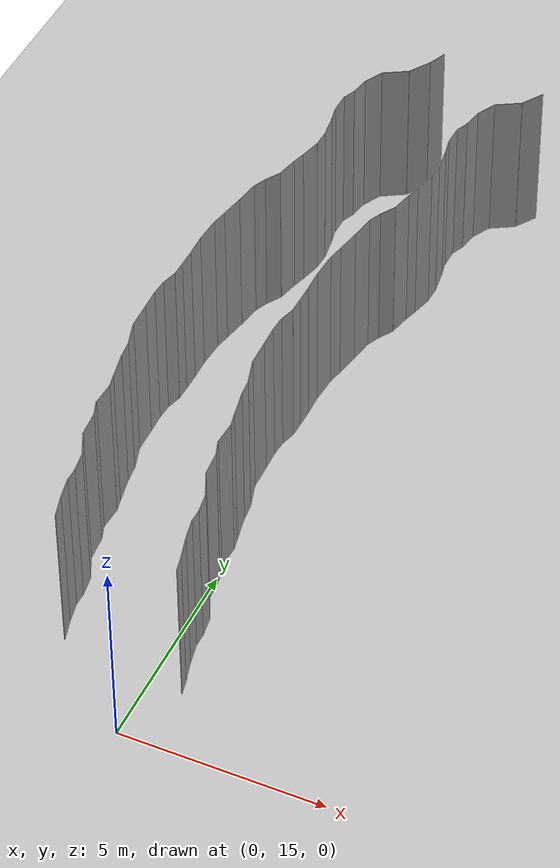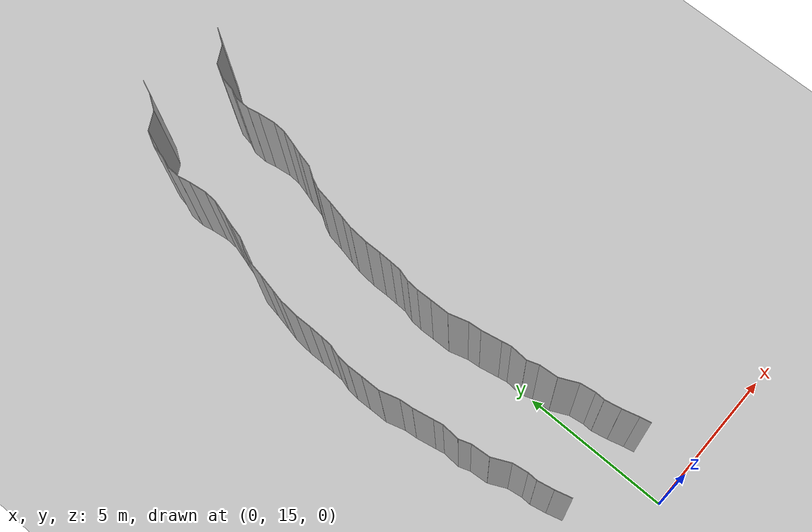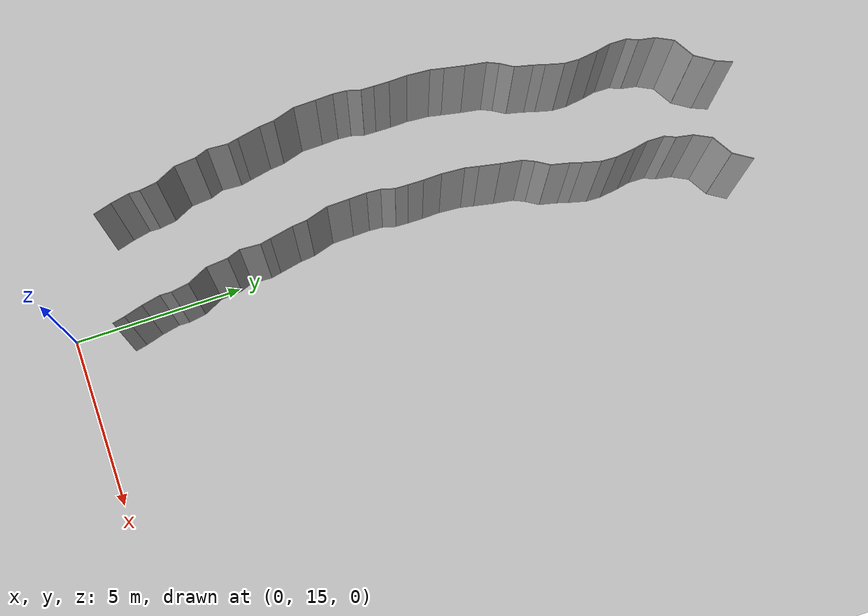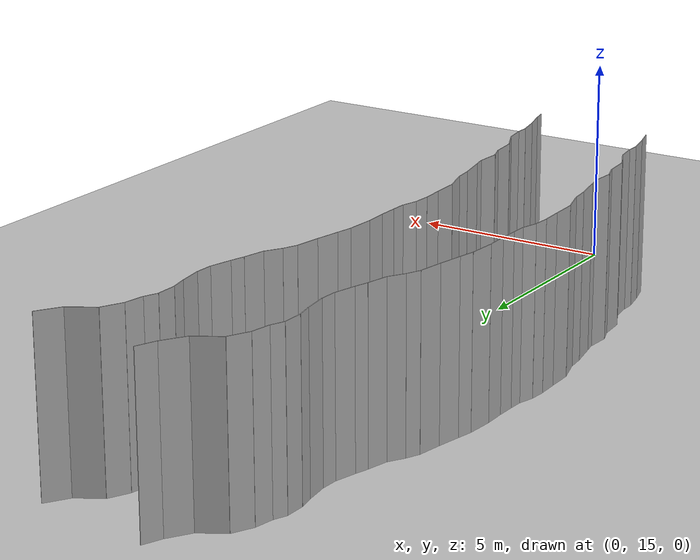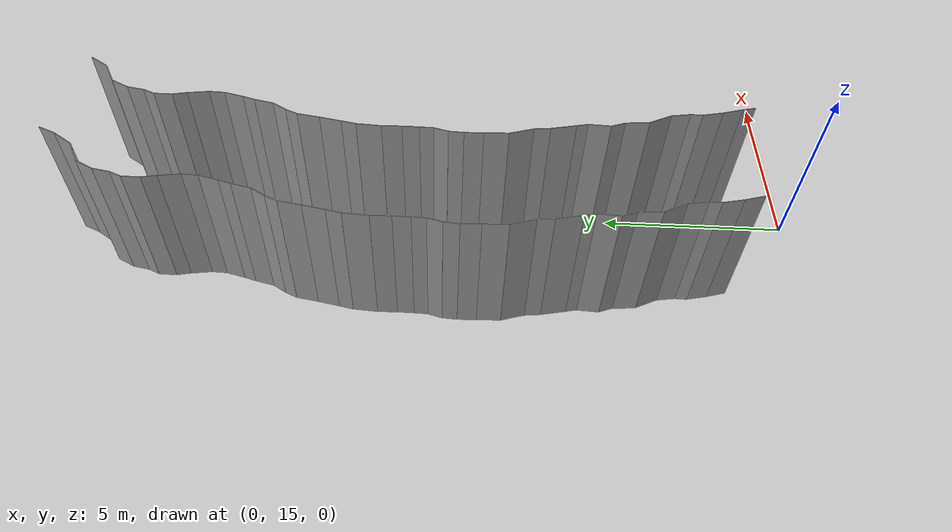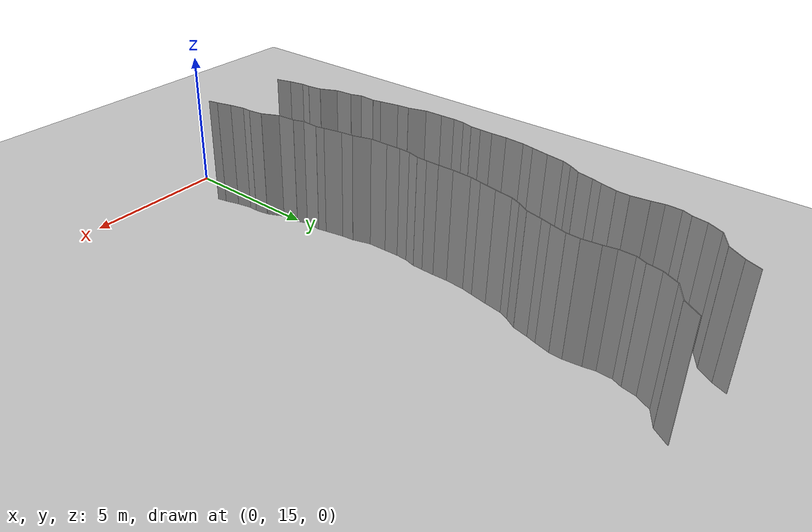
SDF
<sdf version="1.6">
 <world name="default">
  <model name="ground_plane">
   <static>1</static>
   <link name="link">
    <collision name="collision">
     <geometry><plane><normal>0 0 1</normal><size>200 200</size></plane></geometry>
     <surface><friction><ode><mu>100</mu><mu2>50</mu2></ode></friction></surface>
    </collision>
    <visual name="visual">
     <cast_shadows>0</cast_shadows>
     <geometry><plane><normal>0 0 1</normal><size>200 200</size></plane></geometry>
     <material>
      <script><uri>file://media/materials/scripts/gazebo.material</uri><name>Gazebo/Grey</name></script>
     </material>
    </visual>
   </link>
   <pose>0 100 0 0 -0 0</pose>
  </model>
  <model name="wall_73">
   <static>1</static>
   <pose>0.7550774608659254 16.759949421015538 2 0 0 0.21776068323996245</pose>
   <link name="link">
    <collision name="collision"><geometry><box><size>0.02 0.359325681317 4</size></box></geometry></collision>
    <visual name="visual">
     <material>
      <script><name>Gazebo/Grey</name><uri>file://media/materials/scripts/gazebo.material</uri></script>
     </material>
     <geometry><box><size>0.02 0.359325681317 4</size></box></geometry>
    </visual>
   </link>
  </model>
  <model name="wall_74">
   <static>1</static>
   <pose>-2.3580878478650598 17.201675022491074 2 0 0 0.2722587550987722</pose>
   <link name="link">
    <collision name="collision"><geometry><box><size>0.02 0.552979956595 4</size></box></geometry></collision>
    <visual name="visual">
     <material>
      <script><name>Gazebo/Grey</name><uri>file://media/materials/scripts/gazebo.material</uri></script>
     </material>
     <geometry><box><size>0.02 0.552979956595 4</size></box></geometry>
    </visual>
   </link>
  </model>
  <model name="wall_75">
   <static>1</static>
   <pose>0.6419121521349402 17.201675022491074 2 0 0 0.2722587550987722</pose>
   <link name="link">
    <collision name="collision"><geometry><box><size>0.02 0.552979956595 4</size></box></geometry></collision>
    <visual name="visual">
     <material>
      <script><name>Gazebo/Grey</name><uri>file://media/materials/scripts/gazebo.material</uri></script>
     </material>
     <geometry><box><size>0.02 0.552979956595 4</size></box></geometry>
    </visual>
   </link>
  </model>
  <model name="wall_76">
   <static>1</static>
   <pose>-2.4879441324434226 17.73647820993353 2 0 0 0.20385657502360116</pose>
   <link name="link">
    <collision name="collision"><geometry><box><size>0.02 0.548349519776 4</size></box></geometry></collision>
    <visual name="visual">
     <material>
      <script><name>Gazebo/Grey</name><uri>file://media/materials/scripts/gazebo.material</uri></script>
     </material>
     <geometry><box><size>0.02 0.548349519776 4</size></box></geometry>
    </visual>
   </link>
  </model>
  <model name="wall_77">
   <static>1</static>
   <pose>0.5120558675565774 17.73647820993353 2 0 0 0.20385657502360116</pose>
   <link name="link">
    <collision name="collision"><geometry><box><size>0.02 0.548349519776 4</size></box></geometry></collision>
    <visual name="visual">
     <material>
      <script><name>Gazebo/Grey</name><uri>file://media/materials/scripts/gazebo.material</uri></script>
     </material>
     <geometry><box><size>0.02 0.548349519776 4</size></box></geometry>
    </visual>
   </link>
  </model>
  <model name="wall_78">
   <static>1</static>
   <pose>-2.53915870391547 18.161688756901018 2 0 0 -0.027377183669309108</pose>
   <link name="link">
    <collision name="collision"><geometry><box><size>0.02 0.313543683075 4</size></box></geometry></collision>
    <visual name="visual">
     <material>
      <script><name>Gazebo/Grey</name><uri>file://media/materials/scripts/gazebo.material</uri></script>
     </material>
     <geometry><box><size>0.02 0.313543683075 4</size></box></geometry>
    </visual>
   </link>
  </model>
  <model name="wall_79">
   <static>1</static>
   <pose>0.46084129608453006 18.161688756901018 2 0 0 -0.027377183669309108</pose>
   <link name="link">
    <collision name="collision"><geometry><box><size>0.02 0.313543683075 4</size></box></geometry></collision>
    <visual name="visual">
     <material>
      <script><name>Gazebo/Grey</name><uri>file://media/materials/scripts/gazebo.material</uri></script>
     </material>
     <geometry><box><size>0.02 0.313543683075 4</size></box></geometry>
    </visual>
   </link>
  </model>
  <model name="wall_80">
   <static>1</static>
   <pose>-2.573424783727916 18.57162538054854 2 0 0 0.15110604399465902</pose>
   <link name="link">
    <collision name="collision"><geometry><box><size>0.02 0.51228444389 4</size></box></geometry></collision>
    <visual name="visual">
     <material>
      <script><name>Gazebo/Grey</name><uri>file://media/materials/scripts/gazebo.material</uri></script>
     </material>
     <geometry><box><size>0.02 0.51228444389 4</size></box></geometry>
    </visual>
   </link>
  </model>
  <model name="wall_81">
   <static>1</static>
   <pose>0.42657521627208395 18.57162538054854 2 0 0 0.15110604399465902</pose>
   <link name="link">
    <collision name="collision"><geometry><box><size>0.02 0.51228444389 4</size></box></geometry></collision>
    <visual name="visual">
     <material>
      <script><name>Gazebo/Grey</name><uri>file://media/materials/scripts/gazebo.material</uri></script>
     </material>
     <geometry><box><size>0.02 0.51228444389 4</size></box></geometry>
    </visual>
   </link>
  </model>
  <model name="wall_82">
   <static>1</static>
   <pose>-2.7519881979428247 19.118807327787838 2 0 0 0.4444904747670683</pose>
   <link name="link">
    <collision name="collision"><geometry><box><size>0.02 0.651193375674 4</size></box></geometry></collision>
    <visual name="visual">
     <material>
      <script><name>Gazebo/Grey</name><uri>file://media/materials/scripts/gazebo.material</uri></script>
     </material>
     <geometry><box><size>0.02 0.651193375674 4</size></box></geometry>
    </visual>
   </link>
  </model>
  <model name="wall_83">
   <static>1</static>
   <pose>0.24801180205717532 19.118807327787838 2 0 0 0.4444904747670683</pose>
   <link name="link">
    <collision name="collision"><geometry><box><size>0.02 0.651193375674 4</size></box></geometry></collision>
    <visual name="visual">
     <material>
      <script><name>Gazebo/Grey</name><uri>file://media/materials/scripts/gazebo.material</uri></script>
     </material>
     <geometry><box><size>0.02 0.651193375674 4</size></box></geometry>
    </visual>
   </link>
  </model>
  <model name="wall_84">
   <static>1</static>
   <pose>-2.9184482682267223 19.72543154447419 2 0 0 0.08440742873577052</pose>
   <link name="link">
    <collision name="collision"><geometry><box><size>0.02 0.627565853117 4</size></box></geometry></collision>
    <visual name="visual">
     <material>
      <script><name>Gazebo/Grey</name><uri>file://media/materials/scripts/gazebo.material</uri></script>
     </material>
     <geometry><box><size>0.02 0.627565853117 4</size></box></geometry>
    </visual>
   </link>
  </model>
  <model name="wall_85">
   <static>1</static>
   <pose>0.08155173177327768 19.72543154447419 2 0 0 0.08440742873577052</pose>
   <link name="link">
    <collision name="collision"><geometry><box><size>0.02 0.627565853117 4</size></box></geometry></collision>
    <visual name="visual">
     <material>
      <script><name>Gazebo/Grey</name><uri>file://media/materials/scripts/gazebo.material</uri></script>
     </material>
     <geometry><box><size>0.02 0.627565853117 4</size></box></geometry>
    </visual>
   </link>
  </model>
  <model name="wall_86">
   <static>1</static>
   <pose>-3.0103802036234923 20.224765987854678 2 0 0 0.3373606412311</pose>
   <link name="link">
    <collision name="collision"><geometry><box><size>0.02 0.395638827299 4</size></box></geometry></collision>
    <visual name="visual">
     <material>
      <script><name>Gazebo/Grey</name><uri>file://media/materials/scripts/gazebo.material</uri></script>
     </material>
     <geometry><box><size>0.02 0.395638827299 4</size></box></geometry>
    </visual>
   </link>
  </model>
  <model name="wall_87">
   <static>1</static>
   <pose>-0.010380203623492346 20.224765987854678 2 0 0 0.3373606412311</pose>
   <link name="link">
    <collision name="collision"><geometry><box><size>0.02 0.395638827299 4</size></box></geometry></collision>
    <visual name="visual">
     <material>
      <script><name>Gazebo/Grey</name><uri>file://media/materials/scripts/gazebo.material</uri></script>
     </material>
     <geometry><box><size>0.02 0.395638827299 4</size></box></geometry>
    </visual>
   </link>
  </model>
  <model name="wall_88">
   <static>1</static>
   <pose>-3.0590614660273667 20.705230304146117 2 0 0 -0.05710852619003276</pose>
   <link name="link">
    <collision name="collision"><geometry><box><size>0.02 0.588550827933 4</size></box></geometry></collision>
    <visual name="visual">
     <material>
      <script><name>Gazebo/Grey</name><uri>file://media/materials/scripts/gazebo.material</uri></script>
     </material>
     <geometry><box><size>0.02 0.588550827933 4</size></box></geometry>
    </visual>
   </link>
  </model>
  <model name="wall_89">
   <static>1</static>
   <pose>-0.05906146602736673 20.705230304146117 2 0 0 -0.05710852619003276</pose>
   <link name="link">
    <collision name="collision"><geometry><box><size>0.02 0.588550827933 4</size></box></geometry></collision>
    <visual name="visual">
     <material>
      <script><name>Gazebo/Grey</name><uri>file://media/materials/scripts/gazebo.material</uri></script>
     </material>
     <geometry><box><size>0.02 0.588550827933 4</size></box></geometry>
    </visual>
   </link>
  </model>
  <model name="wall_90">
   <static>1</static>
   <pose>-3.0735588118573456 21.148337560839384 2 0 0 0.20659712142865527</pose>
   <link name="link">
    <collision name="collision"><geometry><box><size>0.02 0.305111483007 4</size></box></geometry></collision>
    <visual name="visual">
     <material>
      <script><name>Gazebo/Grey</name><uri>file://media/materials/scripts/gazebo.material</uri></script>
     </material>
     <geometry><box><size>0.02 0.305111483007 4</size></box></geometry>
    </visual>
   </link>
  </model>
  <model name="wall_91">
   <static>1</static>
   <pose>-0.07355881185734559 21.148337560839384 2 0 0 0.20659712142865527</pose>
   <link name="link">
    <collision name="collision"><geometry><box><size>0.02 0.305111483007 4</size></box></geometry></collision>
    <visual name="visual">
     <material>
      <script><name>Gazebo/Grey</name><uri>file://media/materials/scripts/gazebo.material</uri></script>
     </material>
     <geometry><box><size>0.02 0.305111483007 4</size></box></geometry>
    </visual>
   </link>
  </model>
  <model name="wall_92">
   <static>1</static>
   <pose>-3.172111809200735 21.633806882878694 2 0 0 0.19747451174473082</pose>
   <link name="link">
    <collision name="collision"><geometry><box><size>0.02 0.685640773296 4</size></box></geometry></collision>
    <visual name="visual">
     <material>
      <script><name>Gazebo/Grey</name><uri>file://media/materials/scripts/gazebo.material</uri></script>
     </material>
     <geometry><box><size>0.02 0.685640773296 4</size></box></geometry>
    </visual>
   </link>
  </model>
  <model name="wall_93">
   <static>1</static>
   <pose>-0.172111809200735 21.633806882878694 2 0 0 0.19747451174473082</pose>
   <link name="link">
    <collision name="collision"><geometry><box><size>0.02 0.685640773296 4</size></box></geometry></collision>
    <visual name="visual">
     <material>
      <script><name>Gazebo/Grey</name><uri>file://media/materials/scripts/gazebo.material</uri></script>
     </material>
     <geometry><box><size>0.02 0.685640773296 4</size></box></geometry>
    </visual>
   </link>
  </model>
  <model name="wall_94">
   <static>1</static>
   <pose>-3.260638031250036 22.18285722947107 2 0 0 0.09956545866144452</pose>
   <link name="link">
    <collision name="collision"><geometry><box><size>0.02 0.427904435598 4</size></box></geometry></collision>
    <visual name="visual">
     <material>
      <script><name>Gazebo/Grey</name><uri>file://media/materials/scripts/gazebo.material</uri></script>
     </material>
     <geometry><box><size>0.02 0.427904435598 4</size></box></geometry>
    </visual>
   </link>
  </model>
  <model name="wall_95">
   <static>1</static>
   <pose>-0.26063803125003604 22.18285722947107 2 0 0 0.09956545866144452</pose>
   <link name="link">
    <collision name="collision"><geometry><box><size>0.02 0.427904435598 4</size></box></geometry></collision>
    <visual name="visual">
     <material>
      <script><name>Gazebo/Grey</name><uri>file://media/materials/scripts/gazebo.material</uri></script>
     </material>
     <geometry><box><size>0.02 0.427904435598 4</size></box></geometry>
    </visual>
   </link>
  </model>
  <model name="wall_96">
   <static>1</static>
   <pose>-3.37559019041575 22.713039445539632 2 0 0 0.28710877245513095</pose>
   <link name="link">
    <collision name="collision"><geometry><box><size>0.02 0.661663328301 4</size></box></geometry></collision>
    <visual name="visual">
     <material>
      <script><name>Gazebo/Grey</name><uri>file://media/materials/scripts/gazebo.material</uri></script>
     </material>
     <geometry><box><size>0.02 0.661663328301 4</size></box></geometry>
    </visual>
   </link>
  </model>
  <model name="wall_97">
   <static>1</static>
   <pose>-0.37559019041575015 22.713039445539632 2 0 0 0.28710877245513095</pose>
   <link name="link">
    <collision name="collision"><geometry><box><size>0.02 0.661663328301 4</size></box></geometry></collision>
    <visual name="visual">
     <material>
      <script><name>Gazebo/Grey</name><uri>file://media/materials/scripts/gazebo.material</uri></script>
     </material>
     <geometry><box><size>0.02 0.661663328301 4</size></box></geometry>
    </visual>
   </link>
  </model>
  <model name="wall_98">
   <static>1</static>
   <pose>-3.4765655600204584 23.350627148155734 2 0 0 0.022757001247260777</pose>
   <link name="link">
    <collision name="collision"><geometry><box><size>0.02 0.640762104032 4</size></box></geometry></collision>
    <visual name="visual">
     <material>
      <script><name>Gazebo/Grey</name><uri>file://media/materials/scripts/gazebo.material</uri></script>
     </material>
     <geometry><box><size>0.02 0.640762104032 4</size></box></geometry>
    </visual>
   </link>
  </model>
  <model name="wall_99">
   <static>1</static>
   <pose>-0.47656556002045836 23.350627148155734 2 0 0 0.022757001247260777</pose>
   <link name="link">
    <collision name="collision"><geometry><box><size>0.02 0.640762104032 4</size></box></geometry></collision>
    <visual name="visual">
     <material>
      <script><name>Gazebo/Grey</name><uri>file://media/materials/scripts/gazebo.material</uri></script>
     </material>
     <geometry><box><size>0.02 0.640762104032 4</size></box></geometry>
    </visual>
   </link>
  </model>
  <model name="wall_100">
   <static>1</static>
   <pose>-3.4926785539419574 23.92471308522436 2 0 0 0.0347501264575898</pose>
   <link name="link">
    <collision name="collision"><geometry><box><size>0.02 0.507882303425 4</size></box></geometry></collision>
    <visual name="visual">
     <material>
      <script><name>Gazebo/Grey</name><uri>file://media/materials/scripts/gazebo.material</uri></script>
     </material>
     <geometry><box><size>0.02 0.507882303425 4</size></box></geometry>
    </visual>
   </link>
  </model>
  <model name="wall_101">
   <static>1</static>
   <pose>-0.49267855394195736 23.92471308522436 2 0 0 0.0347501264575898</pose>
   <link name="link">
    <collision name="collision"><geometry><box><size>0.02 0.507882303425 4</size></box></geometry></collision>
    <visual name="visual">
     <material>
      <script><name>Gazebo/Grey</name><uri>file://media/materials/scripts/gazebo.material</uri></script>
     </material>
     <geometry><box><size>0.02 0.507882303425 4</size></box></geometry>
    </visual>
   </link>
  </model>
  <model name="wall_102">
   <static>1</static>
   <pose>-3.4880060224781717 24.378263700243625 2 0 0 -0.06745385195750807</pose>
   <link name="link">
    <collision name="collision"><geometry><box><size>0.02 0.400436199218 4</size></box></geometry></collision>
    <visual name="visual">
     <material>
      <script><name>Gazebo/Grey</name><uri>file://media/materials/scripts/gazebo.material</uri></script>
     </material>
     <geometry><box><size>0.02 0.400436199218 4</size></box></geometry>
    </visual>
   </link>
  </model>
  <model name="wall_103">
   <static>1</static>
   <pose>-0.4880060224781717 24.378263700243625 2 0 0 -0.06745385195750807</pose>
   <link name="link">
    <collision name="collision"><geometry><box><size>0.02 0.400436199218 4</size></box></geometry></collision>
    <visual name="visual">
     <material>
      <script><name>Gazebo/Grey</name><uri>file://media/materials/scripts/gazebo.material</uri></script>
     </material>
     <geometry><box><size>0.02 0.400436199218 4</size></box></geometry>
    </visual>
   </link>
  </model>
  <model name="wall_104">
   <static>1</static>
   <pose>-3.4211406904779946 24.769253763773005 2 0 0 -0.27216691738547527</pose>
   <link name="link">
    <collision name="collision"><geometry><box><size>0.02 0.397070486104 4</size></box></geometry></collision>
    <visual name="visual">
     <material>
      <script><name>Gazebo/Grey</name><uri>file://media/materials/scripts/gazebo.material</uri></script>
     </material>
     <geometry><box><size>0.02 0.397070486104 4</size></box></geometry>
    </visual>
   </link>
  </model>
  <model name="wall_105">
   <static>1</static>
   <pose>-0.42114069047799463 24.769253763773005 2 0 0 -0.27216691738547527</pose>
   <link name="link">
    <collision name="collision"><geometry><box><size>0.02 0.397070486104 4</size></box></geometry></collision>
    <visual name="visual">
     <material>
      <script><name>Gazebo/Grey</name><uri>file://media/materials/scripts/gazebo.material</uri></script>
     </material>
     <geometry><box><size>0.02 0.397070486104 4</size></box></geometry>
    </visual>
   </link>
  </model>
  <model name="wall_106">
   <static>1</static>
   <pose>-3.3622685841015447 25.1434598851362 2 0 0 -0.03006008768025267</pose>
   <link name="link">
    <collision name="collision"><geometry><box><size>0.02 0.366123067038 4</size></box></geometry></collision>
    <visual name="visual">
     <material>
      <script><name>Gazebo/Grey</name><uri>file://media/materials/scripts/gazebo.material</uri></script>
     </material>
     <geometry><box><size>0.02 0.366123067038 4</size></box></geometry>
    </visual>
   </link>
  </model>
  <model name="wall_107">
   <static>1</static>
   <pose>-0.3622685841015447 25.1434598851362 2 0 0 -0.03006008768025267</pose>
   <link name="link">
    <collision name="collision"><geometry><box><size>0.02 0.366123067038 4</size></box></geometry></collision>
    <visual name="visual">
     <material>
      <script><name>Gazebo/Grey</name><uri>file://media/materials/scripts/gazebo.material</uri></script>
     </material>
     <geometry><box><size>0.02 0.366123067038 4</size></box></geometry>
    </visual>
   </link>
  </model>
  <model name="wall_108">
   <static>1</static>
   <pose>-3.3534130535216713 25.551516314463214 2 0 0 -0.014898263752222586</pose>
   <link name="link">
    <collision name="collision"><geometry><box><size>0.02 0.450205157639 4</size></box></geometry></collision>
    <visual name="visual">
     <material>
      <script><name>Gazebo/Grey</name><uri>file://media/materials/scripts/gazebo.material</uri></script>
     </material>
     <geometry><box><size>0.02 0.450205157639 4</size></box></geometry>
    </visual>
   </link>
  </model>
  <model name="wall_109">
   <static>1</static>
   <pose>-0.3534130535216713 25.551516314463214 2 0 0 -0.014898263752222586</pose>
   <link name="link">
    <collision name="collision"><geometry><box><size>0.02 0.450205157639 4</size></box></geometry></collision>
    <visual name="visual">
     <material>
      <script><name>Gazebo/Grey</name><uri>file://media/materials/scripts/gazebo.material</uri></script>
     </material>
     <geometry><box><size>0.02 0.450205157639 4</size></box></geometry>
    </visual>
   </link>
  </model>
  <model name="wall_110">
   <static>1</static>
   <pose>-3.356392899036975 26.041410473022033 2 0 0 0.02391146507970312</pose>
   <link name="link">
    <collision name="collision"><geometry><box><size>0.02 0.529784569041 4</size></box></geometry></collision>
    <visual name="visual">
     <material>
      <script><name>Gazebo/Grey</name><uri>file://media/materials/scripts/gazebo.material</uri></script>
     </material>
     <geometry><box><size>0.02 0.529784569041 4</size></box></geometry>
    </visual>
   </link>
  </model>
  <model name="wall_111">
   <static>1</static>
   <pose>-0.35639289903697513 26.041410473022033 2 0 0 0.02391146507970312</pose>
   <link name="link">
    <collision name="collision"><geometry><box><size>0.02 0.529784569041 4</size></box></geometry></collision>
    <visual name="visual">
     <material>
      <script><name>Gazebo/Grey</name><uri>file://media/materials/scripts/gazebo.material</uri></script>
     </material>
     <geometry><box><size>0.02 0.529784569041 4</size></box></geometry>
    </visual>
   </link>
  </model>
  <model name="wall_112">
   <static>1</static>
   <pose>-3.3404072515148333 26.635480271856657 2 0 0 -0.06768320656146763</pose>
   <link name="link">
    <collision name="collision"><geometry><box><size>0.02 0.660017674616 4</size></box></geometry></collision>
    <visual name="visual">
     <material>
      <script><name>Gazebo/Grey</name><uri>file://media/materials/scripts/gazebo.material</uri></script>
     </material>
     <geometry><box><size>0.02 0.660017674616 4</size></box></geometry>
    </visual>
   </link>
  </model>
  <model name="wall_113">
   <static>1</static>
   <pose>-0.3404072515148333 26.635480271856657 2 0 0 -0.06768320656146763</pose>
   <link name="link">
    <collision name="collision"><geometry><box><size>0.02 0.660017674616 4</size></box></geometry></collision>
    <visual name="visual">
     <material>
      <script><name>Gazebo/Grey</name><uri>file://media/materials/scripts/gazebo.material</uri></script>
     </material>
     <geometry><box><size>0.02 0.660017674616 4</size></box></geometry>
    </visual>
   </link>
  </model>
  <model name="wall_114">
   <static>1</static>
   <pose>-3.278045276268228 27.158589274621665 2 0 0 -0.2036958244449089</pose>
   <link name="link">
    <collision name="collision"><geometry><box><size>0.02 0.395896435569 4</size></box></geometry></collision>
    <visual name="visual">
     <material>
      <script><name>Gazebo/Grey</name><uri>file://media/materials/scripts/gazebo.material</uri></script>
     </material>
     <geometry><box><size>0.02 0.395896435569 4</size></box></geometry>
    </visual>
   </link>
  </model>
  <model name="wall_115">
   <static>1</static>
   <pose>-0.27804527626822795 27.158589274621665 2 0 0 -0.2036958244449089</pose>
   <link name="link">
    <collision name="collision"><geometry><box><size>0.02 0.395896435569 4</size></box></geometry></collision>
    <visual name="visual">
     <material>
      <script><name>Gazebo/Grey</name><uri>file://media/materials/scripts/gazebo.material</uri></script>
     </material>
     <geometry><box><size>0.02 0.395896435569 4</size></box></geometry>
    </visual>
   </link>
  </model>
  <model name="wall_116">
   <static>1</static>
   <pose>-3.1810493759839127 27.64320814069163 2 0 0 -0.19342512237228718</pose>
   <link name="link">
    <collision name="collision"><geometry><box><size>0.02 0.592576804888 4</size></box></geometry></collision>
    <visual name="visual">
     <material>
      <script><name>Gazebo/Grey</name><uri>file://media/materials/scripts/gazebo.material</uri></script>
     </material>
     <geometry><box><size>0.02 0.592576804888 4</size></box></geometry>
    </visual>
   </link>
  </model>
  <model name="wall_117">
   <static>1</static>
   <pose>-0.18104937598391269 27.64320814069163 2 0 0 -0.19342512237228718</pose>
   <link name="link">
    <collision name="collision"><geometry><box><size>0.02 0.592576804888 4</size></box></geometry></collision>
    <visual name="visual">
     <material>
      <script><name>Gazebo/Grey</name><uri>file://media/materials/scripts/gazebo.material</uri></script>
     </material>
     <geometry><box><size>0.02 0.592576804888 4</size></box></geometry>
    </visual>
   </link>
  </model>
  <model name="wall_118">
   <static>1</static>
   <pose>-3.0746691874933614 28.233946151855786 2 0 0 -0.16330397522302026</pose>
   <link name="link">
    <collision name="collision"><geometry><box><size>0.02 0.608039473544 4</size></box></geometry></collision>
    <visual name="visual">
     <material>
      <script><name>Gazebo/Grey</name><uri>file://media/materials/scripts/gazebo.material</uri></script>
     </material>
     <geometry><box><size>0.02 0.608039473544 4</size></box></geometry>
    </visual>
   </link>
  </model>
  <model name="wall_119">
   <static>1</static>
   <pose>-0.07466918749336138 28.233946151855786 2 0 0 -0.16330397522302026</pose>
   <link name="link">
    <collision name="collision"><geometry><box><size>0.02 0.608039473544 4</size></box></geometry></collision>
    <visual name="visual">
     <material>
      <script><name>Gazebo/Grey</name><uri>file://media/materials/scripts/gazebo.material</uri></script>
     </material>
     <geometry><box><size>0.02 0.608039473544 4</size></box></geometry>
    </visual>
   </link>
  </model>
  <model name="wall_120">
   <static>1</static>
   <pose>-2.9534566263487974 28.695164218834012 2 0 0 -0.418854308049997</pose>
   <link name="link">
    <collision name="collision"><geometry><box><size>0.02 0.353001334746 4</size></box></geometry></collision>
    <visual name="visual">
     <material>
      <script><name>Gazebo/Grey</name><uri>file://media/materials/scripts/gazebo.material</uri></script>
     </material>
     <geometry><box><size>0.02 0.353001334746 4</size></box></geometry>
    </visual>
   </link>
  </model>
  <model name="wall_121">
   <static>1</static>
   <pose>0.046543373651202646 28.695164218834012 2 0 0 -0.418854308049997</pose>
   <link name="link">
    <collision name="collision"><geometry><box><size>0.02 0.353001334746 4</size></box></geometry></collision>
    <visual name="visual">
     <material>
      <script><name>Gazebo/Grey</name><uri>file://media/materials/scripts/gazebo.material</uri></script>
     </material>
     <geometry><box><size>0.02 0.353001334746 4</size></box></geometry>
    </visual>
   </link>
  </model>
  <model name="wall_122">
   <static>1</static>
   <pose>-2.769249267228615 29.039672645666798 2 0 0 -0.5502425237390761</pose>
   <link name="link">
    <collision name="collision"><geometry><box><size>0.02 0.429999430466 4</size></box></geometry></collision>
    <visual name="visual">
     <material>
      <script><name>Gazebo/Grey</name><uri>file://media/materials/scripts/gazebo.material</uri></script>
     </material>
     <geometry><box><size>0.02 0.429999430466 4</size></box></geometry>
    </visual>
   </link>
  </model>
  <model name="wall_123">
   <static>1</static>
   <pose>0.23075073277138491 29.039672645666798 2 0 0 -0.5502425237390761</pose>
   <link name="link">
    <collision name="collision"><geometry><box><size>0.02 0.429999430466 4</size></box></geometry></collision>
    <visual name="visual">
     <material>
      <script><name>Gazebo/Grey</name><uri>file://media/materials/scripts/gazebo.material</uri></script>
     </material>
     <geometry><box><size>0.02 0.429999430466 4</size></box></geometry>
    </visual>
   </link>
  </model>
  <model name="wall_124">
   <static>1</static>
   <pose>-2.596490526270831 29.484019601218396 2 0 0 -0.22711544646572687</pose>
   <link name="link">
    <collision name="collision"><geometry><box><size>0.02 0.535925973622 4</size></box></geometry></collision>
    <visual name="visual">
     <material>
      <script><name>Gazebo/Grey</name><uri>file://media/materials/scripts/gazebo.material</uri></script>
     </material>
     <geometry><box><size>0.02 0.535925973622 4</size></box></geometry>
    </visual>
   </link>
  </model>
  <model name="wall_125">
   <static>1</static>
   <pose>0.4035094737291689 29.484019601218396 2 0 0 -0.22711544646572687</pose>
   <link name="link">
    <collision name="collision"><geometry><box><size>0.02 0.535925973622 4</size></box></geometry></collision>
    <visual name="visual">
     <material>
      <script><name>Gazebo/Grey</name><uri>file://media/materials/scripts/gazebo.material</uri></script>
     </material>
     <geometry><box><size>0.02 0.535925973622 4</size></box></geometry>
    </visual>
   </link>
  </model>
  <model name="wall_126">
   <static>1</static>
   <pose>-2.4881090916266255 29.90686813657523 2 0 0 -0.2887022005089361</pose>
   <link name="link">
    <collision name="collision"><geometry><box><size>0.02 0.337501475603 4</size></box></geometry></collision>
    <visual name="visual">
     <material>
      <script><name>Gazebo/Grey</name><uri>file://media/materials/scripts/gazebo.material</uri></script>
     </material>
     <geometry><box><size>0.02 0.337501475603 4</size></box></geometry>
    </visual>
   </link>
  </model>
  <model name="wall_127">
   <static>1</static>
   <pose>0.5118909083733745 29.90686813657523 2 0 0 -0.2887022005089361</pose>
   <link name="link">
    <collision name="collision"><geometry><box><size>0.02 0.337501475603 4</size></box></geometry></collision>
    <visual name="visual">
     <material>
      <script><name>Gazebo/Grey</name><uri>file://media/materials/scripts/gazebo.material</uri></script>
     </material>
     <geometry><box><size>0.02 0.337501475603 4</size></box></geometry>
    </visual>
   </link>
  </model>
  <model name="wall_128">
   <static>1</static>
   <pose>-2.3736314465062462 30.328112122899004 2 0 0 -0.2506421133115511</pose>
   <link name="link">
    <collision name="collision"><geometry><box><size>0.02 0.535692875456 4</size></box></geometry></collision>
    <visual name="visual">
     <material>
      <script><name>Gazebo/Grey</name><uri>file://media/materials/scripts/gazebo.material</uri></script>
     </material>
     <geometry><box><size>0.02 0.535692875456 4</size></box></geometry>
    </visual>
   </link>
  </model>
  <model name="wall_129">
   <static>1</static>
   <pose>0.6263685534937538 30.328112122899004 2 0 0 -0.2506421133115511</pose>
   <link name="link">
    <collision name="collision"><geometry><box><size>0.02 0.535692875456 4</size></box></geometry></collision>
    <visual name="visual">
     <material>
      <script><name>Gazebo/Grey</name><uri>file://media/materials/scripts/gazebo.material</uri></script>
     </material>
     <geometry><box><size>0.02 0.535692875456 4</size></box></geometry>
    </visual>
   </link>
  </model>
  <model name="wall_130">
   <static>1</static>
   <pose>-2.298468027922062 30.79781900812583 2 0 0 -0.041504631617629933</pose>
   <link name="link">
    <collision name="collision"><geometry><box><size>0.02 0.420821906232 4</size></box></geometry></collision>
    <visual name="visual">
     <material>
      <script><name>Gazebo/Grey</name><uri>file://media/materials/scripts/gazebo.material</uri></script>
     </material>
     <geometry><box><size>0.02 0.420821906232 4</size></box></geometry>
    </visual>
   </link>
  </model>
  <model name="wall_131">
   <static>1</static>
   <pose>0.7015319720779378 30.79781900812583 2 0 0 -0.041504631617629933</pose>
   <link name="link">
    <collision name="collision"><geometry><box><size>0.02 0.420821906232 4</size></box></geometry></collision>
    <visual name="visual">
     <material>
      <script><name>Gazebo/Grey</name><uri>file://media/materials/scripts/gazebo.material</uri></script>
     </material>
     <geometry><box><size>0.02 0.420821906232 4</size></box></geometry>
    </visual>
   </link>
  </model>
  <model name="wall_132">
   <static>1</static>
   <pose>-2.3282483827912337 31.296272798511932 2 0 0 0.1328276604587078</pose>
   <link name="link">
    <collision name="collision"><geometry><box><size>0.02 0.581570927501 4</size></box></geometry></collision>
    <visual name="visual">
     <material>
      <script><name>Gazebo/Grey</name><uri>file://media/materials/scripts/gazebo.material</uri></script>
     </material>
     <geometry><box><size>0.02 0.581570927501 4</size></box></geometry>
    </visual>
   </link>
  </model>
  <model name="wall_133">
   <static>1</static>
   <pose>0.6717516172087663 31.296272798511932 2 0 0 0.1328276604587078</pose>
   <link name="link">
    <collision name="collision"><geometry><box><size>0.02 0.581570927501 4</size></box></geometry></collision>
    <visual name="visual">
     <material>
      <script><name>Gazebo/Grey</name><uri>file://media/materials/scripts/gazebo.material</uri></script>
     </material>
     <geometry><box><size>0.02 0.581570927501 4</size></box></geometry>
    </visual>
   </link>
  </model>
  <model name="wall_134">
   <static>1</static>
   <pose>-2.406269584704103 31.778388307733792 2 0 0 0.201023170386226</pose>
   <link name="link">
    <collision name="collision"><geometry><box><size>0.02 0.395752280653 4</size></box></geometry></collision>
    <visual name="visual">
     <material>
      <script><name>Gazebo/Grey</name><uri>file://media/materials/scripts/gazebo.material</uri></script>
     </material>
     <geometry><box><size>0.02 0.395752280653 4</size></box></geometry>
    </visual>
   </link>
  </model>
  <model name="wall_135">
   <static>1</static>
   <pose>0.5937304152958971 31.778388307733792 2 0 0 0.201023170386226</pose>
   <link name="link">
    <collision name="collision"><geometry><box><size>0.02 0.395752280653 4</size></box></geometry></collision>
    <visual name="visual">
     <material>
      <script><name>Gazebo/Grey</name><uri>file://media/materials/scripts/gazebo.material</uri></script>
     </material>
     <geometry><box><size>0.02 0.395752280653 4</size></box></geometry>
    </visual>
   </link>
  </model>
  <model name="wall_136">
   <static>1</static>
   <pose>-2.4413431679476343 32.218914206341765 2 0 0 -0.01798720182897488</pose>
   <link name="link">
    <collision name="collision"><geometry><box><size>0.02 0.49334866916 4</size></box></geometry></collision>
    <visual name="visual">
     <material>
      <script><name>Gazebo/Grey</name><uri>file://media/materials/scripts/gazebo.material</uri></script>
     </material>
     <geometry><box><size>0.02 0.49334866916 4</size></box></geometry>
    </visual>
   </link>
  </model>
  <model name="wall_137">
   <static>1</static>
   <pose>0.5586568320523657 32.218914206341765 2 0 0 -0.01798720182897488</pose>
   <link name="link">
    <collision name="collision"><geometry><box><size>0.02 0.49334866916 4</size></box></geometry></collision>
    <visual name="visual">
     <material>
      <script><name>Gazebo/Grey</name><uri>file://media/materials/scripts/gazebo.material</uri></script>
     </material>
     <geometry><box><size>0.02 0.49334866916 4</size></box></geometry>
    </visual>
   </link>
  </model>
  <model name="wall_138">
   <static>1</static>
   <pose>-2.3701894667496437 32.62078868634486 2 0 0 -0.40590090779690924</pose>
   <link name="link">
    <collision name="collision"><geometry><box><size>0.02 0.337938606372 4</size></box></geometry></collision>
    <visual name="visual">
     <material>
      <script><name>Gazebo/Grey</name><uri>file://media/materials/scripts/gazebo.material</uri></script>
     </material>
     <geometry><box><size>0.02 0.337938606372 4</size></box></geometry>
    </visual>
   </link>
  </model>
  <model name="wall_139">
   <static>1</static>
   <pose>0.6298105332503563 32.62078868634486 2 0 0 -0.40590090779690924</pose>
   <link name="link">
    <collision name="collision"><geometry><box><size>0.02 0.337938606372 4</size></box></geometry></collision>
    <visual name="visual">
     <material>
      <script><name>Gazebo/Grey</name><uri>file://media/materials/scripts/gazebo.material</uri></script>
     </material>
     <geometry><box><size>0.02 0.337938606372 4</size></box></geometry>
    </visual>
   </link>
  </model>
  <model name="wall_140">
   <static>1</static>
   <pose>-2.2607173230914883 33.009523107108514 2 0 0 -0.1811038183682419</pose>
   <link name="link">
    <collision name="collision"><geometry><box><size>0.02 0.474753104366 4</size></box></geometry></collision>
    <visual name="visual">
     <material>
      <script><name>Gazebo/Grey</name><uri>file://media/materials/scripts/gazebo.material</uri></script>
     </material>
     <geometry><box><size>0.02 0.474753104366 4</size></box></geometry>
    </visual>
   </link>
  </model>
  <model name="wall_141">
   <static>1</static>
   <pose>0.7392826769085117 33.009523107108514 2 0 0 -0.1811038183682419</pose>
   <link name="link">
    <collision name="collision"><geometry><box><size>0.02 0.474753104366 4</size></box></geometry></collision>
    <visual name="visual">
     <material>
      <script><name>Gazebo/Grey</name><uri>file://media/materials/scripts/gazebo.material</uri></script>
     </material>
     <geometry><box><size>0.02 0.474753104366 4</size></box></geometry>
    </visual>
   </link>
  </model>
  <model name="wall_142">
   <static>1</static>
   <pose>-2.096304269491912 33.48379254107834 2 0 0 -0.4678595254764388</pose>
   <link name="link">
    <collision name="collision"><geometry><box><size>0.02 0.539530416756 4</size></box></geometry></collision>
    <visual name="visual">
     <material>
      <script><name>Gazebo/Grey</name><uri>file://media/materials/scripts/gazebo.material</uri></script>
     </material>
     <geometry><box><size>0.02 0.539530416756 4</size></box></geometry>
    </visual>
   </link>
  </model>
  <model name="wall_143">
   <static>1</static>
   <pose>0.9036957305080882 33.48379254107834 2 0 0 -0.4678595254764388</pose>
   <link name="link">
    <collision name="collision"><geometry><box><size>0.02 0.539530416756 4</size></box></geometry></collision>
    <visual name="visual">
     <material>
      <script><name>Gazebo/Grey</name><uri>file://media/materials/scripts/gazebo.material</uri></script>
     </material>
     <geometry><box><size>0.02 0.539530416756 4</size></box></geometry>
    </visual>
   </link>
  </model>
  <model name="wall_144">
   <static>1</static>
   <pose>-1.681288298329437 33.895355501465744 2 0 0 -1.0435811005950058</pose>
   <link name="link">
    <collision name="collision"><geometry><box><size>0.02 0.678903475136 4</size></box></geometry></collision>
    <visual name="visual">
     <material>
      <script><name>Gazebo/Grey</name><uri>file://media/materials/scripts/gazebo.material</uri></script>
     </material>
     <geometry><box><size>0.02 0.678903475136 4</size></box></geometry>
    </visual>
   </link>
  </model>
  <model name="wall_145">
   <static>1</static>
   <pose>1.318711701670563 33.895355501465744 2 0 0 -1.0435811005950058</pose>
   <link name="link">
    <collision name="collision"><geometry><box><size>0.02 0.678903475136 4</size></box></geometry></collision>
    <visual name="visual">
     <material>
      <script><name>Gazebo/Grey</name><uri>file://media/materials/scripts/gazebo.material</uri></script>
     </material>
     <geometry><box><size>0.02 0.678903475136 4</size></box></geometry>
    </visual>
   </link>
  </model>
  <model name="wall_146">
   <static>1</static>
   <pose>-1.2184778645578653 34.32762028470525 2 0 0 -0.5750091971194763</pose>
   <link name="link">
    <collision name="collision"><geometry><box><size>0.02 0.623166925031 4</size></box></geometry></collision>
    <visual name="visual">
     <material>
      <script><name>Gazebo/Grey</name><uri>file://media/materials/scripts/gazebo.material</uri></script>
     </material>
     <geometry><box><size>0.02 0.623166925031 4</size></box></geometry>
    </visual>
   </link>
  </model>
  <model name="wall_147">
   <static>1</static>
   <pose>1.7815221354421347 34.32762028470525 2 0 0 -0.5750091971194763</pose>
   <link name="link">
    <collision name="collision"><geometry><box><size>0.02 0.623166925031 4</size></box></geometry></collision>
    <visual name="visual">
     <material>
      <script><name>Gazebo/Grey</name><uri>file://media/materials/scripts/gazebo.material</uri></script>
     </material>
     <geometry><box><size>0.02 0.623166925031 4</size></box></geometry>
    </visual>
   </link>
  </model>
  <model name="wall_148">
   <static>1</static>
   <pose>-0.9536596506162306 34.81855095070675 2 0 0 -0.39390007437567404</pose>
   <link name="link">
    <collision name="collision"><geometry><box><size>0.02 0.496965548643 4</size></box></geometry></collision>
    <visual name="visual">
     <material>
      <script><name>Gazebo/Grey</name><uri>file://media/materials/scripts/gazebo.material</uri></script>
     </material>
     <geometry><box><size>0.02 0.496965548643 4</size></box></geometry>
    </visual>
   </link>
  </model>
 </world>
</sdf>
